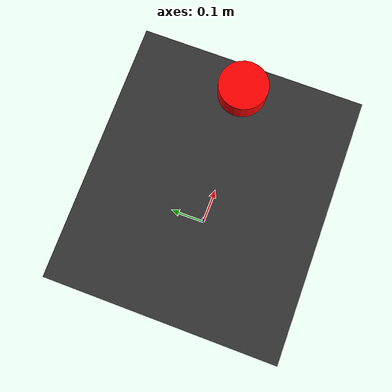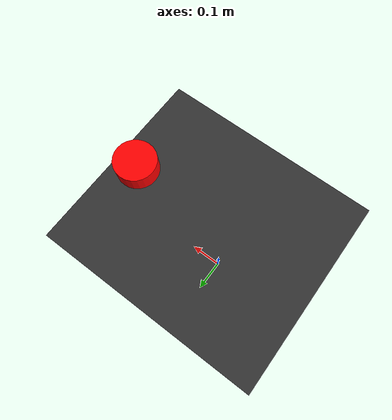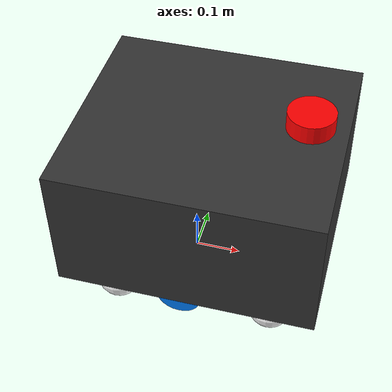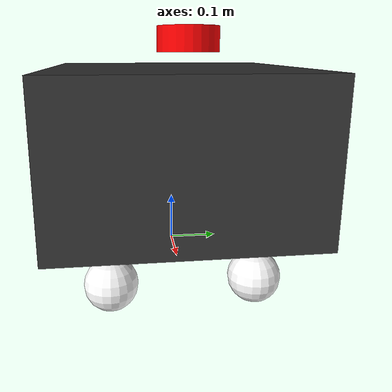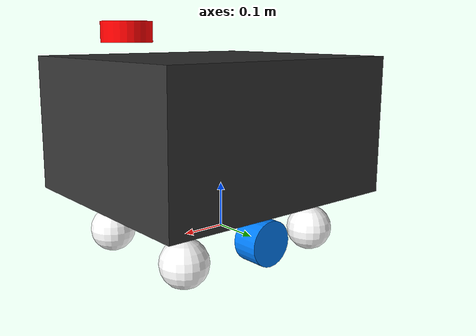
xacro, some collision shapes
<?xml version="1.0"?>
<robot xmlns:xacro="http://www.ros.org/wiki/xacro"  name="zhbbot">

    <xacro:include filename="zhbbot_core_perfect.urdf.xacro" />
    <xacro:zhbbot_core/>

    <xacro:include filename="zhbbot_ros2control.xacro" />
    <xacro:zhbbot_control/>

    <xacro:include filename="zhbbot_lidar.xacro" />

</robot>

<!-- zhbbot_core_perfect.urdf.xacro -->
<robot xmlns:xacro="http://www.ros.org/wiki/xacro" >

    <xacro:macro name="zhbbot_core" params="">

        <xacro:include filename="zhbbot_common.xacro" />
        <xacro:zhbbot_common/>

        <!-- BASE LINK -->

        <link name="base_link">
            <visual>
                <geometry>
                    <box size="0.01 0.01 0.01"/>
                </geometry>
                <material name="Cyan">
                    <color rgba="0 1.0 1.0 1.0"/>
                </material>
            </visual>
        </link>

        <!-- BASE_FOOTPRINT LINK -->

        <!-- For Differantial Drive Controller -->
        <joint name="base_footprint_joint" type="fixed">
            <parent link="base_link"/>
            <child link="base_footprint"/>
            <origin xyz="0 0 -0.05" rpy="0 0 0"/>
        </joint>

        <link name="base_footprint">
        </link>

        <!-- CHASSIS Information -->

        <joint name="chassis_joint" type="fixed">
            <parent link="base_link"/>
            <child link="chassis"/>
            <origin xyz="0 0 0"/>
        </joint>

        <link name="chassis">
            <visual>
                <origin xyz="0 0 0"/>
                <geometry>
                    <mesh filename="file://$(find zhbbot_description)/meshes/URDF_SAVVY.STL"/>
                </geometry>
                <material name="grey"/>
            </visual>
            <collision>
                <origin xyz="0.03595 -0.00002 0.2385"/>
                <geometry>
                    <box size="0.558 0.4876 0.295"/>
                </geometry>
            </collision>
            <xacro:inertial_box mass="38.3" x="0.516" y="0.4876" z="0.295">
            <origin xyz="0.0 0.0 0.2335" rpy="0 0 0"/>
            </xacro:inertial_box>

        </link>

        <!-- LEFT WHEEL -->

        <joint name="left_wheel_joint" type="continuous">
            <parent link="base_link"/>
            <child link="left_wheel"/>
            <origin xyz="0 ${(wheel_thickness/2) + 0.105} 0" rpy="-${pi/2} 0 0" />
            <axis xyz="0 0 1"/>
        </joint>

        <link name="left_wheel">
        <visual>
                <geometry>
                    <cylinder radius="${wheel_radius}" length="${wheel_thickness}"/>
                </geometry>
                <material name="blue"/>
            </visual>
            <collision>
                <geometry>
                    <sphere radius="${wheel_radius}"/>
                </geometry>
            </collision>
            <xacro:inertial_cylinder mass="${wheel_mass}" length="${wheel_thickness}" radius="${wheel_radius}">
                <origin xyz="0 0 0" rpy="0 0 0"/>
            </xacro:inertial_cylinder>
        </link>

        <gazebo reference="left_wheel">
            <material>Gazebo/Black</material>
        </gazebo>

        <!-- RIGHT WHEEL -->

        <joint name="right_wheel_joint" type="continuous">
            <parent link="base_link"/>
            <child link="right_wheel"/>
            <origin xyz="0 -${(wheel_thickness/2) + 0.105} 0" rpy="${pi/2} 0 0" />
            <axis xyz="0 0 -1"/>
        </joint>

        <link name="right_wheel">
            <visual>
                <geometry>
                    <cylinder radius="${wheel_radius}" length="${wheel_thickness}"/>
                </geometry>
                <material name="blue"/>
            </visual>
            <collision>
                <geometry>
                    <sphere radius="${wheel_radius}"/>
                </geometry>
            </collision>
            <xacro:inertial_cylinder mass="${wheel_mass}" length="${wheel_thickness}" radius="${wheel_radius}">
                <origin xyz="0 0 0" rpy="0 0 0"/>
            </xacro:inertial_cylinder>
        </link>

        <gazebo reference="right_wheel">
            <material>Gazebo/Black</material>
        </gazebo>

        <!-- CASTER WHEEL FONT RIGHT -->

        <joint name="caster_wheel_f_r_joint" type="fixed">
            <parent link="base_link"/>
            <child link="caster_wheel_f_r"/>
            <origin xyz="0.20490726 -0.135475 0.0001" rpy="0 0 0"/>
        </joint>

        <link name="caster_wheel_f_r">
            <visual>
                <geometry>
                    <sphere radius="${caster_wheel_radius}"/>
                </geometry>
                <material name="white"/>
            </visual>
            <collision>
                <geometry>
                    <sphere radius="${caster_wheel_radius}"/>
                </geometry>
            </collision>
            <xacro:inertial_sphere mass="${caster_wheel_mass}" radius="${caster_wheel_radius}">
                <origin xyz="0 0 0" rpy="0 0 0"/>
            </xacro:inertial_sphere>
        </link>

        <gazebo reference="caster_wheel_f_r">
            <material>Gazebo/Blue</material>
            <mu1 value="0.001"/>
            <mu2 value="0.001"/>
        </gazebo>

        <!-- CASTER WHEEL FONT LEFT -->
        <joint name="caster_wheel_f_l_joint" type="fixed">
            <parent link="base_link"/>
            <child link="caster_wheel_f_l"/>
            <origin xyz="0.20490726 0.135475 0.0001" rpy="0 0 0"/>
        </joint>

        <link name="caster_wheel_f_l">
            <visual>
                <geometry>
                    <sphere radius="${caster_wheel_radius}"/>
                </geometry>
                <material name="white"/>
            </visual>
            <collision>
                <geometry>
                    <sphere radius="${caster_wheel_radius}"/>
                </geometry>
            </collision>
            <xacro:inertial_sphere mass="${caster_wheel_mass}" radius="${caster_wheel_radius}">
                <origin xyz="0 0 0" rpy="0 0 0"/>
            </xacro:inertial_sphere>
        </link>

        <gazebo reference="caster_wheel_f_l">
            <material>Gazebo/Blue</material>
            <mu1 value="0.001"/>
            <mu2 value="0.001"/>
        </gazebo>

        <!-- CASTER WHEEL BACK RIGHT -->
        <joint name="caster_wheel_r_r_joint" type="fixed">
            <parent link="base_link"/>
            <child link="caster_wheel_r_r"/>
            <origin xyz="-0.14804637 -0.135475 0.0001" rpy="0 0 0"/>
        </joint>

        <link name="caster_wheel_r_r">
            <visual>
                <geometry>
                    <sphere radius="${caster_wheel_radius}"/>
                </geometry>
                <material name="white"/>
            </visual>
            <collision>
                <geometry>
                    <sphere radius="${caster_wheel_radius}"/>
                </geometry>
            </collision>
            <xacro:inertial_sphere mass="${caster_wheel_mass}" radius="${caster_wheel_radius}">
                <origin xyz="0 0 0" rpy="0 0 0"/>
            </xacro:inertial_sphere>
        </link>

        <gazebo reference="caster_wheel_r_r">
            <material>Gazebo/Blue</material>
            <mu1 value="0.001"/>
            <mu2 value="0.001"/>
        </gazebo>

        <!-- CASTER WHEEL BACK LEFT -->
        <joint name="caster_wheel_r_l_joint" type="fixed">
            <parent link="base_link"/>
            <child link="caster_wheel_r_l"/>
            <origin xyz="-0.14804637 0.135475 0.0001" rpy="0 0 0"/>
        </joint>

        <link name="caster_wheel_r_l">
            <visual>
                <geometry>
                    <sphere radius="${caster_wheel_radius}"/>
                </geometry>
                <material name="white"/>
            </visual>
            <collision>
                <geometry>
                    <sphere radius="${caster_wheel_radius}"/>
                </geometry>
            </collision>
            <xacro:inertial_sphere mass="${caster_wheel_mass}" radius="${caster_wheel_radius}">
                <origin xyz="0 0 0" rpy="0 0 0"/>
            </xacro:inertial_sphere>
        </link>

        <gazebo reference="caster_wheel_r_l">
            <material>Gazebo/Blue</material>
            <mu1 value="0.001"/>
            <mu2 value="0.001"/>
        </gazebo>

    </xacro:macro>

</robot>

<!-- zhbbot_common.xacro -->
<robot xmlns:xacro="http://www.ros.org/wiki/xacro" >

    <!-- Specify some standard inertial calculations https://en.wikipedia.org/wiki/List_of_moments_of_inertia -->
    <!-- These make use of xacro's mathematical functionality -->

    <xacro:macro name="inertial_sphere" params="mass radius *origin">
        <inertial>
            <xacro:insert_block name="origin"/>
            <mass value="${mass}" />
            <inertia ixx="${(2/5) * mass * (radius*radius)}" ixy="0.0" ixz="0.0"
                    iyy="${(2/5) * mass * (radius*radius)}" iyz="0.0"
                    izz="${(2/5) * mass * (radius*radius)}" />
        </inertial>
    </xacro:macro>

    <xacro:macro name="inertial_box" params="mass x y z *origin">
        <inertial>
            <xacro:insert_block name="origin"/>
            <mass value="${mass}" />
            <inertia ixx="${(1/12) * mass * (y*y+z*z)}" ixy="0.0" ixz="0.0"
                    iyy="${(1/12) * mass * (x*x+z*z)}" iyz="0.0"
                    izz="${(1/12) * mass * (x*x+y*y)}" />
        </inertial>
    </xacro:macro>

    <xacro:macro name="inertial_cylinder" params="mass length radius *origin">
        <inertial>
            <xacro:insert_block name="origin"/>
            <mass value="${mass}" />
            <inertia ixx="${(1/12) * mass * (3*radius*radius + length*length)}" ixy="0.0" ixz="0.0"
                    iyy="${(1/12) * mass * (3*radius*radius + length*length)}" iyz="0.0"
                    izz="${(1/2) * mass * (radius*radius)}" />
        </inertial>
    </xacro:macro>

    <!-- Colors -->

    <material name="grey">
        <color rgba="0.2 0.2 0.2 1.0"/>
    </material>

    <material name="orange">
        <color rgba="1.0 0.423529411765 0.0392156862745 1.0"/>
    </material>

    <material name="blue">
        <color rgba="0.0 0.5 1.0 1.0"/>
    </material>

    <material name="red">
        <color rgba="1.0 0.0 0.0 1.0"/>
    </material>

    <material name="black">
        <color rgba="0.0 0.0 0.0 0.6"/>
    </material>

    <material name="white">
        <color rgba="1.0 1.0 1.0 1.0"/>
    </material>

    <material name="darkblue">
        <color rgba="0.0 0.0 0.3764 0.6"/>
    </material>

    <!-- Mobile Robot Parameter -->
    <xacro:macro name="zhbbot_common">
        <xacro:property name="chassis_length" value="0.8" scope="parent"/>
        <xacro:property name="chassis_width" value="0.5" scope="parent"/>
        <xacro:property name="chassis_height" value="0.138" scope="parent"/>
        <xacro:property name="chassis_mass" value="1.0" scope="parent"/>
        <xacro:property name="wheel_radius" value="0.05" scope="parent"/>
        <xacro:property name="wheel_thickness" value="0.06" scope="parent"/>
        <xacro:property name="wheel_mass" value="0.45133" scope="parent"/>
        <xacro:property name="wheel_offset_x" value="0.4" scope="parent"/>
        <xacro:property name="wheel_offset_y" value="0.2" scope="parent"/>
        <xacro:property name="wheel_offset_z" value="0.0001" scope="parent"/>
        <xacro:property name="caster_wheel_radius" value="0.05" scope="parent"/>
        <xacro:property name="caster_wheel_mass" value="0.32379" scope="parent"/>
        <xacro:property name="caster_wheel_offset_x" value="0.3" scope="parent"/>
        <xacro:property name="caster_wheel_offset_y" value="0.2" scope="parent"/>
        <xacro:property name="caster_wheel_offset_z" value="${wheel_offset_z - wheel_radius + caster_wheel_radius}" scope="parent"/>
    </xacro:macro>

</robot>

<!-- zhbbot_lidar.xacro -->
<robot xmlns:xacro="http://www.ros.org/wiki/xacro" >

    <!-- Laser sensor -->
    <joint name="laser_joint" type="fixed">
        <parent link="base_link"/>
        <child link="lidar_link"/>
        <origin xyz="0.23795 0 0.43660" rpy="0 0 0"/>
    </joint>

    <link name="lidar_link">
        <visual>
            <origin xyz="0 0 0"/>
            <geometry>
                <cylinder radius="0.05" length="0.04"/>
            </geometry>
            <material name="red"/>
        </visual>
    </link>

    <gazebo reference="lidar_link">
            <material>Gazebo/Red</material>
    </gazebo>

    <!-- Gazebo Laser sensor -->
    <gazebo reference="lidar_link">
        <sensor name="laser" type="ray">
            <pose> 0 0 0 0 0 0 </pose>
            <visualize>false</visualize>
            <update_rate>5</update_rate>
            <ray>
                <scan>
                    <horizontal>
                        <samples>360</samples>
                        <min_angle>-3.14</min_angle>
                        <max_angle>3.14</max_angle>
                    </horizontal>
                </scan>
                <range>
                    <min>0.25</min>
                    <max>20</max>
                </range>
            </ray>
            <plugin name="laser_controller" filename="libgazebo_ros_ray_sensor.so">
                <ros>
                    <argument>~/out:=scan</argument>
                </ros>
                <output_type>sensor_msgs/LaserScan</output_type>
                <frame_name>lidar_link</frame_name>
            </plugin>
        </sensor>
    </gazebo>

</robot>
